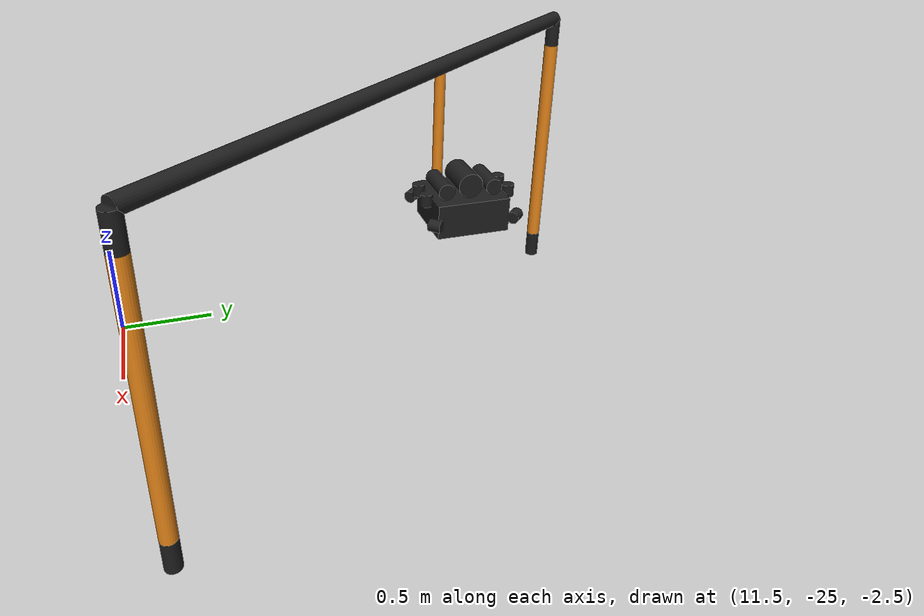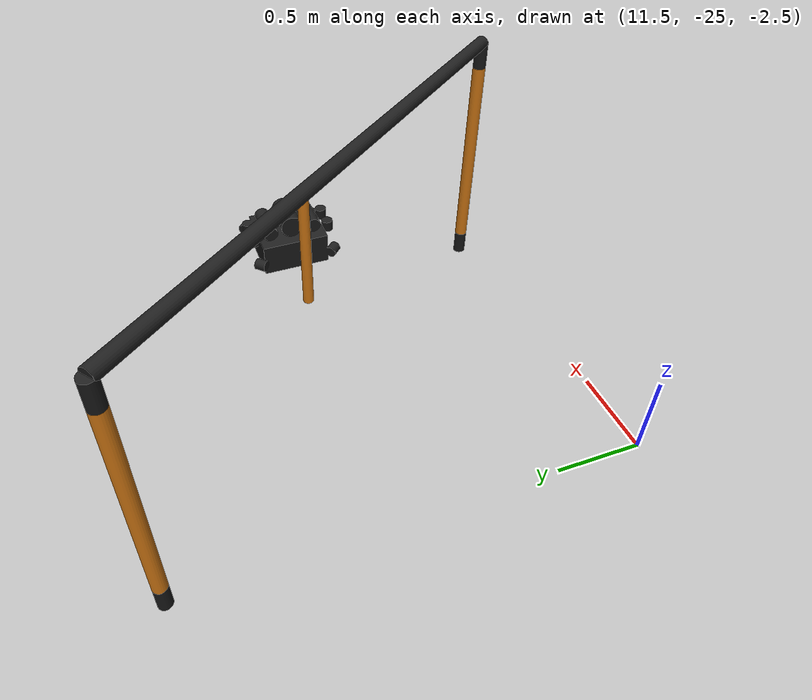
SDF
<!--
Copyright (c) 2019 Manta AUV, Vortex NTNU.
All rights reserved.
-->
<sdf version="1.5">
 <world name="empty_underwater">
  <physics name="default_physics" default="true" type="ode">
   <max_step_size>0.002</max_step_size>
   <real_time_factor>1</real_time_factor>
   <real_time_update_rate>500</real_time_update_rate>
   <ode><solver><type>quick</type><iters>50</iters><sor>0.5</sor></solver></ode>
  </physics>
  <scene>
   <ambient>0.01 0.01 0.01 1.0</ambient>
   <sky><clouds><speed>12</speed></clouds></sky>
   <shadows>1</shadows>
   <fog>
    <color>0.0039 0.26 0.415 1.0</color>
    <type>linear</type>
    <density>0.2</density>
    <start>10</start>
    <end>40</end>
   </fog>
  </scene>
  <spherical_coordinates>
   <latitude_deg>56.71897669633431</latitude_deg>
   <longitude_deg>3.515625</longitude_deg>
  </spherical_coordinates>
  <include><uri>model://sun</uri></include>
  <include><name>gate_side_a</name><pose>12.4 -23.6 -0.9 0 0 -0.9</pose><uri>model://gate</uri></include>
  <include><name>urab_sub</name><pose>12.4 -23.6 -1.5 0 0 0</pose><uri>model://urab_sub</uri></include>
  <light type="directional" name="sun4">
   <pose>8 -19 10 1.75 0 2.9</pose>
   <diffuse>0.8 0.8 0.8 1</diffuse>
   <specular>0.2 0.2 0.2 1</specular>
   <attenuation>
    <range>1000</range>
    <constant>0.9</constant>
    <linear>0.01</linear>
    <quadratic>0.001</quadratic>
   </attenuation>
   <direction>-0.5 0.1 -0.9</direction>
  </light>
  <plugin name="sc_interface" filename="libuuv_sc_ros_interface_plugin.so"/>
 </world>
</sdf>

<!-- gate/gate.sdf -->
<sdf version='1.6'>
  <model name='gate'>
    <link name='gate'>
      <self_collide>0</self_collide>
      <enable_wind>0</enable_wind>
      <kinematic>0</kinematic>
      <pose frame=''>0 0 0 0 -0 0</pose>
      <gravity>1</gravity>
      <inertial>
        <mass>1</mass>
        <pose frame=''>0 0 0 0 -0 0</pose>
        <inertia>
          <ixx>1</ixx>
          <ixy>0</ixy>
          <ixz>0</ixz>
          <iyy>1</iyy>
          <iyz>0</iyz>
          <izz>1</izz>
        </inertia>
      </inertial>
      <visual name='gate_top_vis'>
        <pose frame=''>0 0 0 0 1.5707 0</pose>
        <geometry>
          <cylinder>
            <radius>0.0381</radius>
            <length>3.048</length>
          </cylinder>
        </geometry>
        <material>
          <script>
            <uri>file://media/materials/scripts/gazebo.material</uri>
            <name>Gazebo/FlatBlack</name>
          </script>
          <shader type='vertex'>
            <normal_map>__default__</normal_map>
          </shader>
          <ambient>0.1 0.1 0.1 1</ambient>
          <diffuse>0.1 0.1 0.1 1</diffuse>
          <specular>0.01 0.01 0.01 1</specular>
          <emissive>0 0 0 1</emissive>
        </material>
        <transparency>0</transparency>
        <cast_shadows>1</cast_shadows>
      </visual>
      <visual name='gate_left_top_vis'>
        <pose frame=''>-1.524 0 -0.0762 0 -0 0</pose>
        <geometry>
          <cylinder>
            <radius>0.0381</radius>
            <length>0.1524</length>
          </cylinder>
        </geometry>
        <material>
          <script>
            <uri>file://media/materials/scripts/gazebo.material</uri>
            <name>Gazebo/FlatBlack</name>
          </script>
          <shader type='vertex'>
            <normal_map>__default__</normal_map>
          </shader>
          <ambient>0.1 0.1 0.1 1</ambient>
          <diffuse>0.1 0.1 0.1 1</diffuse>
          <specular>0.01 0.01 0.01 1</specular>
          <emissive>0 0 0 1</emissive>
        </material>
        <transparency>0</transparency>
        <cast_shadows>1</cast_shadows>
      </visual>
      <visual name='gate_left_mid_vis'>
        <pose frame=''>-1.524 0 -0.762 0 -0 0</pose>
        <geometry>
          <cylinder>
            <radius>0.0381</radius>
            <length>1.2192</length>
          </cylinder>
        </geometry>
        <material>
          <script>
            <uri>file://media/materials/scripts/gazebo.material</uri>
            <name>Gazebo/Orange</name>
          </script>
          <diffuse>0.6 0.309 0.047 1</diffuse>
          <shader type='vertex'>
            <normal_map>__default__</normal_map>
          </shader>
          <ambient>1 0.509 0.047 1</ambient>
          <specular>0.5 0.5 0.5 1</specular>
          <emissive>0 0 0 1</emissive>
        </material>
        <transparency>0</transparency>
        <cast_shadows>1</cast_shadows>
</visual>
       <visual name='gate_mid_vis'>
        <pose frame=''>-0.30487 0 -0.3048 0 -0 0</pose>
        <geometry>
          <cylinder>
            <radius>0.0254</radius>
            <length>0.6096</length>
          </cylinder>
        </geometry>
        <material>
          <script>
            <uri>file://media/materials/scripts/gazebo.material</uri>
            <name>Gazebo/Orange</name>
          </script>
          <diffuse>0.6 0.309 0.047 1</diffuse>
          <shader type='vertex'>
            <normal_map>__default__</normal_map>
          </shader>
          <ambient>1 0.509 0.047 1</ambient>
          <specular>0.5 0.5 0.5 1</specular>
          <emissive>0 0 0 1</emissive>
        </material>
        <transparency>0</transparency>
        <cast_shadows>1</cast_shadows>
      </visual>
      <visual name='gate_left_bottom_vis'>
        <pose frame=''>-1.524 0 -1.4478 0 -0 0</pose>
        <geometry>
          <cylinder>
            <radius>0.0381</radius>
            <length>0.1524</length>
          </cylinder>
        </geometry>
        <material>
          <script>
            <uri>file://media/materials/scripts/gazebo.material</uri>
            <name>Gazebo/FlatBlack</name>
          </script>
          <shader type='vertex'>
            <normal_map>__default__</normal_map>
          </shader>
          <ambient>0.1 0.1 0.1 1</ambient>
          <diffuse>0.1 0.1 0.1 1</diffuse>
          <specular>0.01 0.01 0.01 1</specular>
          <emissive>0 0 0 1</emissive>
        </material>
        <transparency>0</transparency>
        <cast_shadows>1</cast_shadows>
      </visual>
      <visual name='gate_right_top_vis'>
        <pose frame=''>1.524 0 -0.0762 0 -0 0</pose>
        <geometry>
          <cylinder>
            <radius>0.0381</radius>
            <length>0.1524</length>
          </cylinder>
        </geometry>
        <material>
          <script>
            <uri>file://media/materials/scripts/gazebo.material</uri>
            <name>Gazebo/FlatBlack</name>
          </script>
          <shader type='vertex'>
            <normal_map>__default__</normal_map>
          </shader>
          <ambient>0.1 0.1 0.1 1</ambient>
          <diffuse>0.1 0.1 0.1 1</diffuse>
          <specular>0.01 0.01 0.01 1</specular>
          <emissive>0 0 0 1</emissive>
        </material>
        <transparency>0</transparency>
        <cast_shadows>1</cast_shadows>
      </visual>
      <visual name='gate_right_mid_vis'>
        <pose frame=''>1.524 0 -0.762 0 -0 0</pose>
        <geometry>
          <cylinder>
            <radius>0.0381</radius>
            <length>1.2192</length>
          </cylinder>
        </geometry>
        <material>
          <script>
            <uri>file://media/materials/scripts/gazebo.material</uri>
            <name>Gazebo/Orange</name>
          </script>
          <diffuse>0.6 0.309 0.047 1</diffuse>
          <shader type='vertex'>
            <normal_map>__default__</normal_map>
          </shader>
          <ambient>1 0.509 0.047 1</ambient>
          <specular>0.5 0.5 0.5 1</specular>
          <emissive>0 0 0 1</emissive>
        </material>
        <transparency>0</transparency>
        <cast_shadows>1</cast_shadows>
      </visual>
      <visual name='gate_right_bottom_vis'>
        <pose frame=''>1.524 0 -1.4478 0 -0 0</pose>
        <geometry>
          <cylinder>
            <radius>0.0381</radius>
            <length>0.1524</length>
          </cylinder>
        </geometry>
        <material>
          <script>
            <uri>file://media/materials/scripts/gazebo.material</uri>
            <name>Gazebo/FlatBlack</name>
          </script>
          <shader type='vertex'>
            <normal_map>__default__</normal_map>
          </shader>
          <ambient>0.1 0.1 0.1 1</ambient>
          <diffuse>0.1 0.1 0.1 1</diffuse>
          <specular>0.01 0.01 0.01 1</specular>
          <emissive>0 0 0 1</emissive>
        </material>
        <transparency>0</transparency>
        <cast_shadows>1</cast_shadows>
      </visual>
      <collision name='gate_top_collide'>
        <laser_retro>0</laser_retro>
        <max_contacts>10</max_contacts>
        <pose frame=''>0 0 0 0 1.5707 0</pose>
        <geometry>
          <cylinder>
            <radius>0.0381</radius>
            <length>3.048</length>
          </cylinder>
        </geometry>
        <surface>
          <friction>
            <ode>
              <mu>1</mu>
              <mu2>1</mu2>
              <fdir1>0 0 0</fdir1>
              <slip1>0</slip1>
              <slip2>0</slip2>
            </ode>
            <torsional>
              <coefficient>1</coefficient>
              <patch_radius>0</patch_radius>
              <surface_radius>0</surface_radius>
              <use_patch_radius>1</use_patch_radius>
              <ode>
                <slip>0</slip>
              </ode>
            </torsional>
          </friction>
          <bounce>
            <restitution_coefficient>0</restitution_coefficient>
            <threshold>1e+06</threshold>
          </bounce>
          <contact>
            <collide_without_contact>0</collide_without_contact>
            <collide_without_contact_bitmask>1</collide_without_contact_bitmask>
            <collide_bitmask>1</collide_bitmask>
            <ode>
              <soft_cfm>0</soft_cfm>
              <soft_erp>0.2</soft_erp>
              <kp>1e+13</kp>
              <kd>1</kd>
              <max_vel>0.01</max_vel>
              <min_depth>0</min_depth>
            </ode>
            <bullet>
              <split_impulse>1</split_impulse>
              <split_impulse_penetration_threshold>-0.01</split_impulse_penetration_threshold>
              <soft_cfm>0</soft_cfm>
              <soft_erp>0.2</soft_erp>
              <kp>1e+13</kp>
              <kd>1</kd>
            </bullet>
          </contact>
        </surface>
      </collision>
      <collision name='gate_left_collide'>
        <laser_retro>0</laser_retro>
        <max_contacts>10</max_contacts>
        <pose frame=''>-1.524 0 -0.762 0 -0 0</pose>
        <geometry>
          <cylinder>
            <radius>0.0381</radius>
            <length>1.524</length>
          </cylinder>
        </geometry>
        <surface>
          <friction>
            <ode>
              <mu>1</mu>
              <mu2>1</mu2>
              <fdir1>0 0 0</fdir1>
              <slip1>0</slip1>
              <slip2>0</slip2>
            </ode>
            <torsional>
              <coefficient>1</coefficient>
              <patch_radius>0</patch_radius>
              <surface_radius>0</surface_radius>
              <use_patch_radius>1</use_patch_radius>
              <ode>
                <slip>0</slip>
              </ode>
            </torsional>
          </friction>
          <bounce>
            <restitution_coefficient>0</restitution_coefficient>
            <threshold>1e+06</threshold>
          </bounce>
          <contact>
            <collide_without_contact>0</collide_without_contact>
            <collide_without_contact_bitmask>1</collide_without_contact_bitmask>
            <collide_bitmask>1</collide_bitmask>
            <ode>
              <soft_cfm>0</soft_cfm>
              <soft_erp>0.2</soft_erp>
              <kp>1e+13</kp>
              <kd>1</kd>
              <max_vel>0.01</max_vel>
              <min_depth>0</min_depth>
            </ode>
            <bullet>
              <split_impulse>1</split_impulse>
              <split_impulse_penetration_threshold>-0.01</split_impulse_penetration_threshold>
              <soft_cfm>0</soft_cfm>
              <soft_erp>0.2</soft_erp>
              <kp>1e+13</kp>
              <kd>1</kd>
            </bullet>
          </contact>
        </surface>
      </collision>
      <collision name='gate_right_collide'>
        <laser_retro>0</laser_retro>
        <max_contacts>10</max_contacts>
        <pose frame=''>1.524 0 -0.762 0 -0 0</pose>
        <geometry>
          <cylinder>
            <radius>0.0381</radius>
            <length>1.524</length>
          </cylinder>
        </geometry>
        <surface>
          <friction>
            <ode>
              <mu>1</mu>
              <mu2>1</mu2>
              <fdir1>0 0 0</fdir1>
              <slip1>0</slip1>
              <slip2>0</slip2>
            </ode>
            <torsional>
              <coefficient>1</coefficient>
              <patch_radius>0</patch_radius>
              <surface_radius>0</surface_radius>
              <use_patch_radius>1</use_patch_radius>
              <ode>
                <slip>0</slip>
              </ode>
            </torsional>
          </friction>
          <bounce>
            <restitution_coefficient>0</restitution_coefficient>
            <threshold>1e+06</threshold>
          </bounce>
          <contact>
            <collide_without_contact>0</collide_without_contact>
            <collide_without_contact_bitmask>1</collide_without_contact_bitmask>
            <collide_bitmask>1</collide_bitmask>
            <ode>
              <soft_cfm>0</soft_cfm>
              <soft_erp>0.2</soft_erp>
              <kp>1e+13</kp>
              <kd>1</kd>
              <max_vel>0.01</max_vel>
              <min_depth>0</min_depth>
            </ode>
            <bullet>
              <split_impulse>1</split_impulse>
              <split_impulse_penetration_threshold>-0.01</split_impulse_penetration_threshold>
              <soft_cfm>0</soft_cfm>
              <soft_erp>0.2</soft_erp>
              <kp>1e+13</kp>
              <kd>1</kd>
            </bullet>
          </contact>
        </surface>
      </collision>
    </link>
    <static>1</static>
    <allow_auto_disable>1</allow_auto_disable>
  </model>
</sdf>

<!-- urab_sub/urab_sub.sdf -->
<sdf version='1.5'>

  <model name='urab_sub'>
    <pose>0 0 0 0 0 0</pose>
    <self_collide> 0 </self_collide>
    <static> 1</static>

    <link name='chasis'>
      <pose>0 0 0 0 1.5707 0</pose>
      <visual name='chasis_vis'>
	      <pose>0 0 0 0 0 1.5707</pose>
	      <geometry>
		      <!-- Import the .sdf file from the mechanical team. This is rotated 90 degrees because Gazebo is weird -->
		<mesh>
			<uri>file://urab_sub/urab_sub.stl</uri>
			<!-- 1/15 * (0.42 meters) = the simulated sub is 0.42 meters in width -->
			<scale>0.028 0.028 0.028</scale>
		</mesh>
	</geometry>
        <material>
          <script>
            <uri>file://media/materials/scripts/gazebo.material</uri>
            <name>Gazebo/FlatBlack</name>
          </script>
        </material>
      </visual>
      <collision name='chassis_collide'>
        <geometry>
          <mesh><uri>file://urab_sub/urab_sub.stl</uri></mesh>
        </geometry>
      </collision>
    </link>

  </model>
</sdf>
